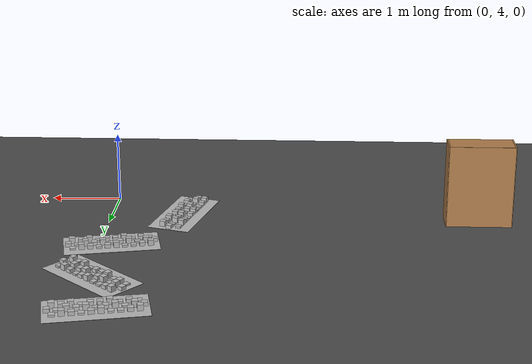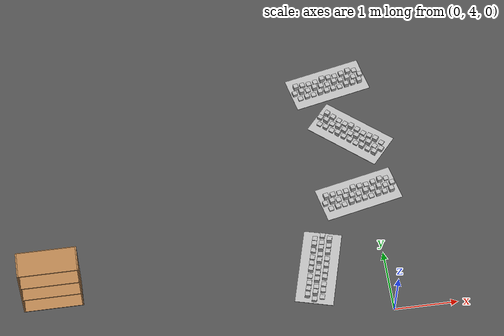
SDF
<sdf version="1.6">
 <world name="default">
  <model name="ground_plane">
   <static>1</static>
   <link name="link">
    <collision name="collision">
     <geometry><plane><normal>0 0 1</normal><size>100 100</size></plane></geometry>
     <surface>
      <contact><collide_bitmask>65535</collide_bitmask></contact>
      <friction><ode><mu>100</mu><mu2>50</mu2></ode></friction>
     </surface>
    </collision>
    <visual name="visual">
     <cast_shadows>0</cast_shadows>
     <geometry><plane><normal>0 0 1</normal><size>100 100</size></plane></geometry>
     <material>
      <script><uri>file://media/materials/scripts/gazebo.material</uri><name>Gazebo/Grey</name></script>
     </material>
    </visual>
   </link>
  </model>
  <model name="frc2016_roughterrain_clone_0">
   <static>1</static>
   <link name="link">
    <visual name="platform">
     <pose>0 0 0.08269 0 -0 0</pose>
     <geometry><box><size>1.27 0.5969 0.003175</size></box></geometry>
    </visual>
    <collision name="platform">
     <pose>0 0 0.08269 0 -0 0</pose>
     <geometry><box><size>1.27 0.5969 0.003175</size></box></geometry>
    </collision>
    <visual name="row1_block1_sm">
     <pose>0.51435 0.1143 0.09698 0 -0 0</pose>
     <geometry><box><size>0.0762 0.0762 0.0254</size></box></geometry>
    </visual>
    <collision name="row1_block1_sm">
     <pose>0.51435 0.1143 0.09698 0 -0 0</pose>
     <geometry><box><size>0.0762 0.0762 0.0254</size></box></geometry>
    </collision>
    <visual name="row1_block2_lg">
     <pose>0.40005 0.1143 0.12238 0 -0 0</pose>
     <geometry><box><size>0.0762 0.0762 0.0762</size></box></geometry>
    </visual>
    <collision name="row1_block2_lg">
     <pose>0.40005 0.1143 0.12238 0 -0 0</pose>
     <geometry><box><size>0.0762 0.0762 0.0762</size></box></geometry>
    </collision>
    <visual name="row1_block3_md">
     <pose>0.28575 0.1143 0.10968 0 -0 0</pose>
     <geometry><box><size>0.0762 0.0762 0.0508</size></box></geometry>
    </visual>
    <collision name="row1_block3_md">
     <pose>0.28575 0.1143 0.10968 0 -0 0</pose>
     <geometry><box><size>0.0762 0.0762 0.0508</size></box></geometry>
    </collision>
    <visual name="row1_block4_sm">
     <pose>0.17145 0.1143 0.09698 0 -0 0</pose>
     <geometry><box><size>0.0762 0.0762 0.0254</size></box></geometry>
    </visual>
    <collision name="row1_block4_sm">
     <pose>0.17145 0.1143 0.09698 0 -0 0</pose>
     <geometry><box><size>0.0762 0.0762 0.0254</size></box></geometry>
    </collision>
    <visual name="row1_block5_md">
     <pose>0.05715 0.1143 0.10968 0 -0 0</pose>
     <geometry><box><size>0.0762 0.0762 0.0508</size></box></geometry>
    </visual>
    <collision name="row1_block5_md">
     <pose>0.05715 0.1143 0.10968 0 -0 0</pose>
     <geometry><box><size>0.0762 0.0762 0.0508</size></box></geometry>
    </collision>
    <visual name="row1_block6_lg">
     <pose>-0.05715 0.1143 0.12238 0 -0 0</pose>
     <geometry><box><size>0.0762 0.0762 0.0762</size></box></geometry>
    </visual>
    <collision name="row1_block6_lg">
     <pose>-0.05715 0.1143 0.12238 0 -0 0</pose>
     <geometry><box><size>0.0762 0.0762 0.0762</size></box></geometry>
    </collision>
    <visual name="row1_block7_sm">
     <pose>-0.17145 0.1143 0.09698 0 -0 0</pose>
     <geometry><box><size>0.0762 0.0762 0.0254</size></box></geometry>
    </visual>
    <collision name="row1_block7_sm">
     <pose>-0.17145 0.1143 0.09698 0 -0 0</pose>
     <geometry><box><size>0.0762 0.0762 0.0254</size></box></geometry>
    </collision>
    <visual name="row1_block8_sm">
     <pose>-0.28575 0.1143 0.09698 0 -0 0</pose>
     <geometry><box><size>0.0762 0.0762 0.0254</size></box></geometry>
    </visual>
    <collision name="row1_block8_sm">
     <pose>-0.28575 0.1143 0.09698 0 -0 0</pose>
     <geometry><box><size>0.0762 0.0762 0.0254</size></box></geometry>
    </collision>
    <visual name="row1_block9_md">
     <pose>-0.40005 0.1143 0.10968 0 -0 0</pose>
     <geometry><box><size>0.0762 0.0762 0.0508</size></box></geometry>
    </visual>
    <collision name="row1_block9_md">
     <pose>-0.40005 0.1143 0.10968 0 -0 0</pose>
     <geometry><box><size>0.0762 0.0762 0.0508</size></box></geometry>
    </collision>
    <visual name="row1_block10_lg">
     <pose>-0.51435 0.1143 0.12238 0 -0 0</pose>
     <geometry><box><size>0.0762 0.0762 0.0762</size></box></geometry>
    </visual>
    <collision name="row1_block10_lg">
     <pose>-0.51435 0.1143 0.12238 0 -0 0</pose>
     <geometry><box><size>0.0762 0.0762 0.0762</size></box></geometry>
    </collision>
    <visual name="row2_block1_md">
     <pose>0.5715 0 0.10968 0 -0 0</pose>
     <geometry><box><size>0.0762 0.0762 0.0508</size></box></geometry>
    </visual>
    <collision name="row2_block1_md">
     <pose>0.5715 0 0.10968 0 -0 0</pose>
     <geometry><box><size>0.0762 0.0762 0.0508</size></box></geometry>
    </collision>
    <visual name="row2_block2_sm">
     <pose>0.4572 0 0.09698 0 -0 0</pose>
     <geometry><box><size>0.0762 0.0762 0.0254</size></box></geometry>
    </visual>
    <collision name="row2_block2_sm">
     <pose>0.4572 0 0.09698 0 -0 0</pose>
     <geometry><box><size>0.0762 0.0762 0.0254</size></box></geometry>
    </collision>
    <visual name="row2_block3_lg">
     <pose>0.3429 0 0.12238 0 -0 0</pose>
     <geometry><box><size>0.0762 0.0762 0.0762</size></box></geometry>
    </visual>
    <collision name="row2_block3_lg">
     <pose>0.3429 0 0.12238 0 -0 0</pose>
     <geometry><box><size>0.0762 0.0762 0.0762</size></box></geometry>
    </collision>
    <visual name="row2_block4_md">
     <pose>0.2286 0 0.10968 0 -0 0</pose>
     <geometry><box><size>0.0762 0.0762 0.0508</size></box></geometry>
    </visual>
    <collision name="row2_block4_md">
     <pose>0.2286 0 0.10968 0 -0 0</pose>
     <geometry><box><size>0.0762 0.0762 0.0508</size></box></geometry>
    </collision>
    <visual name="row2_block5_lg">
     <pose>0.1143 0 0.12238 0 -0 0</pose>
     <geometry><box><size>0.0762 0.0762 0.0762</size></box></geometry>
    </visual>
    <collision name="row2_block5_lg">
     <pose>0.1143 0 0.12238 0 -0 0</pose>
     <geometry><box><size>0.0762 0.0762 0.0762</size></box></geometry>
    </collision>
    <visual name="row2_block6_sm">
     <pose>0 0 0.09698 0 -0 0</pose>
     <geometry><box><size>0.0762 0.0762 0.0254</size></box></geometry>
    </visual>
    <collision name="row2_block6_sm">
     <pose>0 0 0.09698 0 -0 0</pose>
     <geometry><box><size>0.0762 0.0762 0.0254</size></box></geometry>
    </collision>
    <visual name="row2_block7_md">
     <pose>-0.1143 0 0.10968 0 -0 0</pose>
     <geometry><box><size>0.0762 0.0762 0.0508</size></box></geometry>
    </visual>
    <collision name="row2_block7_md">
     <pose>-0.1143 0 0.10968 0 -0 0</pose>
     <geometry><box><size>0.0762 0.0762 0.0508</size></box></geometry>
    </collision>
    <visual name="row2_block8_lg">
     <pose>-0.2286 0 0.12238 0 -0 0</pose>
     <geometry><box><size>0.0762 0.0762 0.0762</size></box></geometry>
    </visual>
    <collision name="row2_block8_lg">
     <pose>-0.2286 0 0.12238 0 -0 0</pose>
     <geometry><box><size>0.0762 0.0762 0.0762</size></box></geometry>
    </collision>
    <visual name="row2_block9_sm">
     <pose>-0.3429 0 0.09698 0 -0 0</pose>
     <geometry><box><size>0.0762 0.0762 0.0254</size></box></geometry>
    </visual>
    <collision name="row2_block9_sm">
     <pose>-0.3429 0 0.09698 0 -0 0</pose>
     <geometry><box><size>0.0762 0.0762 0.0254</size></box></geometry>
    </collision>
    <visual name="row2_block10_lg">
     <pose>-0.4572 0 0.12238 0 -0 0</pose>
     <geometry><box><size>0.0762 0.0762 0.0762</size></box></geometry>
    </visual>
    <collision name="row2_block10_lg">
     <pose>-0.4572 0 0.12238 0 -0 0</pose>
     <geometry><box><size>0.0762 0.0762 0.0762</size></box></geometry>
    </collision>
    <visual name="row2_block11_md">
     <pose>-0.5715 0 0.10968 0 -0 0</pose>
     <geometry><box><size>0.0762 0.0762 0.0508</size></box></geometry>
    </visual>
    <collision name="row2_block11_md">
     <pose>-0.5715 0 0.10968 0 -0 0</pose>
     <geometry><box><size>0.0762 0.0762 0.0508</size></box></geometry>
    </collision>
    <visual name="row3_block1_lg">
     <pose>0.51435 -0.1143 0.12238 0 -0 0</pose>
     <geometry><box><size>0.0762 0.0762 0.0762</size></box></geometry>
    </visual>
    <collision name="row3_block1_lg">
     <pose>0.51435 -0.1143 0.12238 0 -0 0</pose>
     <geometry><box><size>0.0762 0.0762 0.0762</size></box></geometry>
    </collision>
    <visual name="row3_block2_md">
     <pose>0.40005 -0.1143 0.10968 0 -0 0</pose>
     <geometry><box><size>0.0762 0.0762 0.0508</size></box></geometry>
    </visual>
    <collision name="row3_block2_md">
     <pose>0.40005 -0.1143 0.10968 0 -0 0</pose>
     <geometry><box><size>0.0762 0.0762 0.0508</size></box></geometry>
    </collision>
    <visual name="row3_block3_lg">
     <pose>0.28575 -0.1143 0.12238 0 -0 0</pose>
     <geometry><box><size>0.0762 0.0762 0.0762</size></box></geometry>
    </visual>
    <collision name="row3_block3_lg">
     <pose>0.28575 -0.1143 0.12238 0 -0 0</pose>
     <geometry><box><size>0.0762 0.0762 0.0762</size></box></geometry>
    </collision>
    <visual name="row3_block4_sm">
     <pose>0.17145 -0.1143 0.09698 0 -0 0</pose>
     <geometry><box><size>0.0762 0.0762 0.0254</size></box></geometry>
    </visual>
    <collision name="row3_block4_sm">
     <pose>0.17145 -0.1143 0.09698 0 -0 0</pose>
     <geometry><box><size>0.0762 0.0762 0.0254</size></box></geometry>
    </collision>
    <visual name="row3_block5_md">
     <pose>0.05715 -0.1143 0.10968 0 -0 0</pose>
     <geometry><box><size>0.0762 0.0762 0.0508</size></box></geometry>
    </visual>
    <collision name="row3_block5_md">
     <pose>0.05715 -0.1143 0.10968 0 -0 0</pose>
     <geometry><box><size>0.0762 0.0762 0.0508</size></box></geometry>
    </collision>
    <visual name="row3_block6_md">
     <pose>-0.05715 -0.1143 0.10968 0 -0 0</pose>
     <geometry><box><size>0.0762 0.0762 0.0508</size></box></geometry>
    </visual>
    <collision name="row3_block6_md">
     <pose>-0.05715 -0.1143 0.10968 0 -0 0</pose>
     <geometry><box><size>0.0762 0.0762 0.0508</size></box></geometry>
    </collision>
    <visual name="row3_block7_lg">
     <pose>-0.17145 -0.1143 0.12238 0 -0 0</pose>
     <geometry><box><size>0.0762 0.0762 0.0762</size></box></geometry>
    </visual>
    <collision name="row3_block7_lg">
     <pose>-0.17145 -0.1143 0.12238 0 -0 0</pose>
     <geometry><box><size>0.0762 0.0762 0.0762</size></box></geometry>
    </collision>
    <visual name="row3_block8_sm">
     <pose>-0.28575 -0.1143 0.09698 0 -0 0</pose>
     <geometry><box><size>0.0762 0.0762 0.0254</size></box></geometry>
    </visual>
    <collision name="row3_block8_sm">
     <pose>-0.28575 -0.1143 0.09698 0 -0 0</pose>
     <geometry><box><size>0.0762 0.0762 0.0254</size></box></geometry>
    </collision>
    <visual name="row3_block9_md">
     <pose>-0.40005 -0.1143 0.10968 0 -0 0</pose>
     <geometry><box><size>0.0762 0.0762 0.0508</size></box></geometry>
    </visual>
    <collision name="row3_block9_md">
     <pose>-0.40005 -0.1143 0.10968 0 -0 0</pose>
     <geometry><box><size>0.0762 0.0762 0.0508</size></box></geometry>
    </collision>
    <visual name="row3_block10_sm">
     <pose>-0.51435 -0.1143 0.09698 0 -0 0</pose>
     <geometry><box><size>0.0762 0.0762 0.0254</size></box></geometry>
    </visual>
    <collision name="row3_block10_sm">
     <pose>-0.51435 -0.1143 0.09698 0 -0 0</pose>
     <geometry><box><size>0.0762 0.0762 0.0254</size></box></geometry>
    </collision>
   </link>
   <pose>-0.213898 6.06463 0 -0.037204 0.000686 0.216059</pose>
  </model>
  <model name="bookshelf_0">
   <static>1</static>
   <link name="link">
    <inertial><mass>1</mass></inertial>
    <collision name="back">
     <pose>0 0.005 0.6 0 -0 0</pose>
     <geometry><box><size>0.9 0.01 1.2</size></box></geometry>
    </collision>
    <visual name="visual1">
     <pose>0 0.005 0.6 0 -0 0</pose>
     <geometry><box><size>0.9 0.01 1.2</size></box></geometry>
     <material>
      <script><uri>file://media/materials/scripts/gazebo.material</uri><name>Gazebo/Wood</name></script>
     </material>
    </visual>
    <collision name="left_side">
     <pose>0.45 -0.195 0.6 0 -0 0</pose>
     <geometry><box><size>0.02 0.4 1.2</size></box></geometry>
    </collision>
    <visual name="visual2">
     <pose>0.45 -0.195 0.6 0 -0 0</pose>
     <geometry><box><size>0.02 0.4 1.2</size></box></geometry>
     <material>
      <script><uri>file://media/materials/scripts/gazebo.material</uri><name>Gazebo/Wood</name></script>
     </material>
    </visual>
    <collision name="right_side">
     <pose>-0.45 -0.195 0.6 0 -0 0</pose>
     <geometry><box><size>0.02 0.4 1.2</size></box></geometry>
    </collision>
    <visual name="visual3">
     <pose>-0.45 -0.195 0.6 0 -0 0</pose>
     <geometry><box><size>0.02 0.4 1.2</size></box></geometry>
     <material>
      <script><uri>file://media/materials/scripts/gazebo.material</uri><name>Gazebo/Wood</name></script>
     </material>
    </visual>
    <collision name="bottom">
     <pose>0 -0.195 0.03 0 -0 0</pose>
     <geometry><box><size>0.88 0.4 0.06</size></box></geometry>
    </collision>
    <visual name="visual4">
     <pose>0 -0.195 0.03 0 -0 0</pose>
     <geometry><box><size>0.88 0.4 0.06</size></box></geometry>
     <material>
      <script><uri>file://media/materials/scripts/gazebo.material</uri><name>Gazebo/Wood</name></script>
     </material>
    </visual>
    <collision name="top">
     <pose>0 -0.195 1.19 0 -0 0</pose>
     <geometry><box><size>0.88 0.4 0.02</size></box></geometry>
    </collision>
    <visual name="visual5">
     <pose>0 -0.195 1.19 0 -0 0</pose>
     <geometry><box><size>0.88 0.4 0.02</size></box></geometry>
     <material>
      <script><uri>file://media/materials/scripts/gazebo.material</uri><name>Gazebo/Wood</name></script>
     </material>
    </visual>
    <collision name="low_shelf">
     <pose>0 -0.195 0.43 0 -0 0</pose>
     <geometry><box><size>0.88 0.4 0.02</size></box></geometry>
    </collision>
    <visual name="visual6">
     <pose>0 -0.195 0.43 0 -0 0</pose>
     <geometry><box><size>0.88 0.4 0.02</size></box></geometry>
     <material>
      <script><uri>file://media/materials/scripts/gazebo.material</uri><name>Gazebo/Wood</name></script>
     </material>
    </visual>
    <collision name="high_shelf">
     <pose>0 -0.195 0.8 0 -0 0</pose>
     <geometry><box><size>0.88 0.4 0.02</size></box></geometry>
    </collision>
    <visual name="visual7">
     <pose>0 -0.195 0.8 0 -0 0</pose>
     <geometry><box><size>0.88 0.4 0.02</size></box></geometry>
     <material>
      <script><uri>file://media/materials/scripts/gazebo.material</uri><name>Gazebo/Wood</name></script>
     </material>
    </visual>
   </link>
   <pose>-5.19396 5.10085 0 0 -0 0</pose>
  </model>
  <model name="frc2016_roughterrain_clone_2_clone_clone_0_clone_0">
   <static>1</static>
   <link name="link">
    <visual name="platform">
     <pose>0 0 0.08269 0 -0 0</pose>
     <geometry><box><size>1.27 0.5969 0.003175</size></box></geometry>
    </visual>
    <collision name="platform">
     <pose>0 0 0.08269 0 -0 0</pose>
     <geometry><box><size>1.27 0.5969 0.003175</size></box></geometry>
    </collision>
    <visual name="row1_block1_sm">
     <pose>0.51435 0.1143 0.09698 0 -0 0</pose>
     <geometry><box><size>0.0762 0.0762 0.0254</size></box></geometry>
    </visual>
    <collision name="row1_block1_sm">
     <pose>0.51435 0.1143 0.09698 0 -0 0</pose>
     <geometry><box><size>0.0762 0.0762 0.0254</size></box></geometry>
    </collision>
    <visual name="row1_block2_lg">
     <pose>0.40005 0.1143 0.12238 0 -0 0</pose>
     <geometry><box><size>0.0762 0.0762 0.0762</size></box></geometry>
    </visual>
    <collision name="row1_block2_lg">
     <pose>0.40005 0.1143 0.12238 0 -0 0</pose>
     <geometry><box><size>0.0762 0.0762 0.0762</size></box></geometry>
    </collision>
    <visual name="row1_block3_md">
     <pose>0.28575 0.1143 0.10968 0 -0 0</pose>
     <geometry><box><size>0.0762 0.0762 0.0508</size></box></geometry>
    </visual>
    <collision name="row1_block3_md">
     <pose>0.28575 0.1143 0.10968 0 -0 0</pose>
     <geometry><box><size>0.0762 0.0762 0.0508</size></box></geometry>
    </collision>
    <visual name="row1_block4_sm">
     <pose>0.17145 0.1143 0.09698 0 -0 0</pose>
     <geometry><box><size>0.0762 0.0762 0.0254</size></box></geometry>
    </visual>
    <collision name="row1_block4_sm">
     <pose>0.17145 0.1143 0.09698 0 -0 0</pose>
     <geometry><box><size>0.0762 0.0762 0.0254</size></box></geometry>
    </collision>
    <visual name="row1_block5_md">
     <pose>0.05715 0.1143 0.10968 0 -0 0</pose>
     <geometry><box><size>0.0762 0.0762 0.0508</size></box></geometry>
    </visual>
    <collision name="row1_block5_md">
     <pose>0.05715 0.1143 0.10968 0 -0 0</pose>
     <geometry><box><size>0.0762 0.0762 0.0508</size></box></geometry>
    </collision>
    <visual name="row1_block6_lg">
     <pose>-0.05715 0.1143 0.12238 0 -0 0</pose>
     <geometry><box><size>0.0762 0.0762 0.0762</size></box></geometry>
    </visual>
    <collision name="row1_block6_lg">
     <pose>-0.05715 0.1143 0.12238 0 -0 0</pose>
     <geometry><box><size>0.0762 0.0762 0.0762</size></box></geometry>
    </collision>
    <visual name="row1_block7_sm">
     <pose>-0.17145 0.1143 0.09698 0 -0 0</pose>
     <geometry><box><size>0.0762 0.0762 0.0254</size></box></geometry>
    </visual>
    <collision name="row1_block7_sm">
     <pose>-0.17145 0.1143 0.09698 0 -0 0</pose>
     <geometry><box><size>0.0762 0.0762 0.0254</size></box></geometry>
    </collision>
    <visual name="row1_block8_sm">
     <pose>-0.28575 0.1143 0.09698 0 -0 0</pose>
     <geometry><box><size>0.0762 0.0762 0.0254</size></box></geometry>
    </visual>
    <collision name="row1_block8_sm">
     <pose>-0.28575 0.1143 0.09698 0 -0 0</pose>
     <geometry><box><size>0.0762 0.0762 0.0254</size></box></geometry>
    </collision>
    <visual name="row1_block9_md">
     <pose>-0.40005 0.1143 0.10968 0 -0 0</pose>
     <geometry><box><size>0.0762 0.0762 0.0508</size></box></geometry>
    </visual>
    <collision name="row1_block9_md">
     <pose>-0.40005 0.1143 0.10968 0 -0 0</pose>
     <geometry><box><size>0.0762 0.0762 0.0508</size></box></geometry>
    </collision>
    <visual name="row1_block10_lg">
     <pose>-0.51435 0.1143 0.12238 0 -0 0</pose>
     <geometry><box><size>0.0762 0.0762 0.0762</size></box></geometry>
    </visual>
    <collision name="row1_block10_lg">
     <pose>-0.51435 0.1143 0.12238 0 -0 0</pose>
     <geometry><box><size>0.0762 0.0762 0.0762</size></box></geometry>
    </collision>
    <visual name="row2_block1_md">
     <pose>0.5715 0 0.10968 0 -0 0</pose>
     <geometry><box><size>0.0762 0.0762 0.0508</size></box></geometry>
    </visual>
    <collision name="row2_block1_md">
     <pose>0.5715 0 0.10968 0 -0 0</pose>
     <geometry><box><size>0.0762 0.0762 0.0508</size></box></geometry>
    </collision>
    <visual name="row2_block2_sm">
     <pose>0.4572 0 0.09698 0 -0 0</pose>
     <geometry><box><size>0.0762 0.0762 0.0254</size></box></geometry>
    </visual>
    <collision name="row2_block2_sm">
     <pose>0.4572 0 0.09698 0 -0 0</pose>
     <geometry><box><size>0.0762 0.0762 0.0254</size></box></geometry>
    </collision>
    <visual name="row2_block3_lg">
     <pose>0.3429 0 0.12238 0 -0 0</pose>
     <geometry><box><size>0.0762 0.0762 0.0762</size></box></geometry>
    </visual>
    <collision name="row2_block3_lg">
     <pose>0.3429 0 0.12238 0 -0 0</pose>
     <geometry><box><size>0.0762 0.0762 0.0762</size></box></geometry>
    </collision>
    <visual name="row2_block4_md">
     <pose>0.2286 0 0.10968 0 -0 0</pose>
     <geometry><box><size>0.0762 0.0762 0.0508</size></box></geometry>
    </visual>
    <collision name="row2_block4_md">
     <pose>0.2286 0 0.10968 0 -0 0</pose>
     <geometry><box><size>0.0762 0.0762 0.0508</size></box></geometry>
    </collision>
    <visual name="row2_block5_lg">
     <pose>0.1143 0 0.12238 0 -0 0</pose>
     <geometry><box><size>0.0762 0.0762 0.0762</size></box></geometry>
    </visual>
    <collision name="row2_block5_lg">
     <pose>0.1143 0 0.12238 0 -0 0</pose>
     <geometry><box><size>0.0762 0.0762 0.0762</size></box></geometry>
    </collision>
    <visual name="row2_block6_sm">
     <pose>0 0 0.09698 0 -0 0</pose>
     <geometry><box><size>0.0762 0.0762 0.0254</size></box></geometry>
    </visual>
    <collision name="row2_block6_sm">
     <pose>0 0 0.09698 0 -0 0</pose>
     <geometry><box><size>0.0762 0.0762 0.0254</size></box></geometry>
    </collision>
    <visual name="row2_block7_md">
     <pose>-0.1143 0 0.10968 0 -0 0</pose>
     <geometry><box><size>0.0762 0.0762 0.0508</size></box></geometry>
    </visual>
    <collision name="row2_block7_md">
     <pose>-0.1143 0 0.10968 0 -0 0</pose>
     <geometry><box><size>0.0762 0.0762 0.0508</size></box></geometry>
    </collision>
    <visual name="row2_block8_lg">
     <pose>-0.2286 0 0.12238 0 -0 0</pose>
     <geometry><box><size>0.0762 0.0762 0.0762</size></box></geometry>
    </visual>
    <collision name="row2_block8_lg">
     <pose>-0.2286 0 0.12238 0 -0 0</pose>
     <geometry><box><size>0.0762 0.0762 0.0762</size></box></geometry>
    </collision>
    <visual name="row2_block9_sm">
     <pose>-0.3429 0 0.09698 0 -0 0</pose>
     <geometry><box><size>0.0762 0.0762 0.0254</size></box></geometry>
    </visual>
    <collision name="row2_block9_sm">
     <pose>-0.3429 0 0.09698 0 -0 0</pose>
     <geometry><box><size>0.0762 0.0762 0.0254</size></box></geometry>
    </collision>
    <visual name="row2_block10_lg">
     <pose>-0.4572 0 0.12238 0 -0 0</pose>
     <geometry><box><size>0.0762 0.0762 0.0762</size></box></geometry>
    </visual>
    <collision name="row2_block10_lg">
     <pose>-0.4572 0 0.12238 0 -0 0</pose>
     <geometry><box><size>0.0762 0.0762 0.0762</size></box></geometry>
    </collision>
    <visual name="row2_block11_md">
     <pose>-0.5715 0 0.10968 0 -0 0</pose>
     <geometry><box><size>0.0762 0.0762 0.0508</size></box></geometry>
    </visual>
    <collision name="row2_block11_md">
     <pose>-0.5715 0 0.10968 0 -0 0</pose>
     <geometry><box><size>0.0762 0.0762 0.0508</size></box></geometry>
    </collision>
    <visual name="row3_block1_lg">
     <pose>0.51435 -0.1143 0.12238 0 -0 0</pose>
     <geometry><box><size>0.0762 0.0762 0.0762</size></box></geometry>
    </visual>
    <collision name="row3_block1_lg">
     <pose>0.51435 -0.1143 0.12238 0 -0 0</pose>
     <geometry><box><size>0.0762 0.0762 0.0762</size></box></geometry>
    </collision>
    <visual name="row3_block2_md">
     <pose>0.40005 -0.1143 0.10968 0 -0 0</pose>
     <geometry><box><size>0.0762 0.0762 0.0508</size></box></geometry>
    </visual>
    <collision name="row3_block2_md">
     <pose>0.40005 -0.1143 0.10968 0 -0 0</pose>
     <geometry><box><size>0.0762 0.0762 0.0508</size></box></geometry>
    </collision>
    <visual name="row3_block3_lg">
     <pose>0.28575 -0.1143 0.12238 0 -0 0</pose>
     <geometry><box><size>0.0762 0.0762 0.0762</size></box></geometry>
    </visual>
    <collision name="row3_block3_lg">
     <pose>0.28575 -0.1143 0.12238 0 -0 0</pose>
     <geometry><box><size>0.0762 0.0762 0.0762</size></box></geometry>
    </collision>
    <visual name="row3_block4_sm">
     <pose>0.17145 -0.1143 0.09698 0 -0 0</pose>
     <geometry><box><size>0.0762 0.0762 0.0254</size></box></geometry>
    </visual>
    <collision name="row3_block4_sm">
     <pose>0.17145 -0.1143 0.09698 0 -0 0</pose>
     <geometry><box><size>0.0762 0.0762 0.0254</size></box></geometry>
    </collision>
    <visual name="row3_block5_md">
     <pose>0.05715 -0.1143 0.10968 0 -0 0</pose>
     <geometry><box><size>0.0762 0.0762 0.0508</size></box></geometry>
    </visual>
    <collision name="row3_block5_md">
     <pose>0.05715 -0.1143 0.10968 0 -0 0</pose>
     <geometry><box><size>0.0762 0.0762 0.0508</size></box></geometry>
    </collision>
    <visual name="row3_block6_md">
     <pose>-0.05715 -0.1143 0.10968 0 -0 0</pose>
     <geometry><box><size>0.0762 0.0762 0.0508</size></box></geometry>
    </visual>
    <collision name="row3_block6_md">
     <pose>-0.05715 -0.1143 0.10968 0 -0 0</pose>
     <geometry><box><size>0.0762 0.0762 0.0508</size></box></geometry>
    </collision>
    <visual name="row3_block7_lg">
     <pose>-0.17145 -0.1143 0.12238 0 -0 0</pose>
     <geometry><box><size>0.0762 0.0762 0.0762</size></box></geometry>
    </visual>
    <collision name="row3_block7_lg">
     <pose>-0.17145 -0.1143 0.12238 0 -0 0</pose>
     <geometry><box><size>0.0762 0.0762 0.0762</size></box></geometry>
    </collision>
    <visual name="row3_block8_sm">
     <pose>-0.28575 -0.1143 0.09698 0 -0 0</pose>
     <geometry><box><size>0.0762 0.0762 0.0254</size></box></geometry>
    </visual>
    <collision name="row3_block8_sm">
     <pose>-0.28575 -0.1143 0.09698 0 -0 0</pose>
     <geometry><box><size>0.0762 0.0762 0.0254</size></box></geometry>
    </collision>
    <visual name="row3_block9_md">
     <pose>-0.40005 -0.1143 0.10968 0 -0 0</pose>
     <geometry><box><size>0.0762 0.0762 0.0508</size></box></geometry>
    </visual>
    <collision name="row3_block9_md">
     <pose>-0.40005 -0.1143 0.10968 0 -0 0</pose>
     <geometry><box><size>0.0762 0.0762 0.0508</size></box></geometry>
    </collision>
    <visual name="row3_block10_sm">
     <pose>-0.51435 -0.1143 0.09698 0 -0 0</pose>
     <geometry><box><size>0.0762 0.0762 0.0254</size></box></geometry>
    </visual>
    <collision name="row3_block10_sm">
     <pose>-0.51435 -0.1143 0.09698 0 -0 0</pose>
     <geometry><box><size>0.0762 0.0762 0.0254</size></box></geometry>
    </collision>
   </link>
   <pose>-0.158479 7.19541 0 -0.022852 -0.029369 -0.711774</pose>
  </model>
  <model name="frc2016_roughterrain_clone_2_clone_clone_1_clone_clone">
   <static>1</static>
   <link name="link">
    <visual name="platform">
     <pose>0 0 0.08269 0 -0 0</pose>
     <geometry><box><size>1.27 0.5969 0.003175</size></box></geometry>
    </visual>
    <collision name="platform">
     <pose>0 0 0.08269 0 -0 0</pose>
     <geometry><box><size>1.27 0.5969 0.003175</size></box></geometry>
    </collision>
    <visual name="row1_block1_sm">
     <pose>0.51435 0.1143 0.09698 0 -0 0</pose>
     <geometry><box><size>0.0762 0.0762 0.0254</size></box></geometry>
    </visual>
    <collision name="row1_block1_sm">
     <pose>0.51435 0.1143 0.09698 0 -0 0</pose>
     <geometry><box><size>0.0762 0.0762 0.0254</size></box></geometry>
    </collision>
    <visual name="row1_block2_lg">
     <pose>0.40005 0.1143 0.12238 0 -0 0</pose>
     <geometry><box><size>0.0762 0.0762 0.0762</size></box></geometry>
    </visual>
    <collision name="row1_block2_lg">
     <pose>0.40005 0.1143 0.12238 0 -0 0</pose>
     <geometry><box><size>0.0762 0.0762 0.0762</size></box></geometry>
    </collision>
    <visual name="row1_block3_md">
     <pose>0.28575 0.1143 0.10968 0 -0 0</pose>
     <geometry><box><size>0.0762 0.0762 0.0508</size></box></geometry>
    </visual>
    <collision name="row1_block3_md">
     <pose>0.28575 0.1143 0.10968 0 -0 0</pose>
     <geometry><box><size>0.0762 0.0762 0.0508</size></box></geometry>
    </collision>
    <visual name="row1_block4_sm">
     <pose>0.17145 0.1143 0.09698 0 -0 0</pose>
     <geometry><box><size>0.0762 0.0762 0.0254</size></box></geometry>
    </visual>
    <collision name="row1_block4_sm">
     <pose>0.17145 0.1143 0.09698 0 -0 0</pose>
     <geometry><box><size>0.0762 0.0762 0.0254</size></box></geometry>
    </collision>
    <visual name="row1_block5_md">
     <pose>0.05715 0.1143 0.10968 0 -0 0</pose>
     <geometry><box><size>0.0762 0.0762 0.0508</size></box></geometry>
    </visual>
    <collision name="row1_block5_md">
     <pose>0.05715 0.1143 0.10968 0 -0 0</pose>
     <geometry><box><size>0.0762 0.0762 0.0508</size></box></geometry>
    </collision>
    <visual name="row1_block6_lg">
     <pose>-0.05715 0.1143 0.12238 0 -0 0</pose>
     <geometry><box><size>0.0762 0.0762 0.0762</size></box></geometry>
    </visual>
    <collision name="row1_block6_lg">
     <pose>-0.05715 0.1143 0.12238 0 -0 0</pose>
     <geometry><box><size>0.0762 0.0762 0.0762</size></box></geometry>
    </collision>
    <visual name="row1_block7_sm">
     <pose>-0.17145 0.1143 0.09698 0 -0 0</pose>
     <geometry><box><size>0.0762 0.0762 0.0254</size></box></geometry>
    </visual>
    <collision name="row1_block7_sm">
     <pose>-0.17145 0.1143 0.09698 0 -0 0</pose>
     <geometry><box><size>0.0762 0.0762 0.0254</size></box></geometry>
    </collision>
    <visual name="row1_block8_sm">
     <pose>-0.28575 0.1143 0.09698 0 -0 0</pose>
     <geometry><box><size>0.0762 0.0762 0.0254</size></box></geometry>
    </visual>
    <collision name="row1_block8_sm">
     <pose>-0.28575 0.1143 0.09698 0 -0 0</pose>
     <geometry><box><size>0.0762 0.0762 0.0254</size></box></geometry>
    </collision>
    <visual name="row1_block9_md">
     <pose>-0.40005 0.1143 0.10968 0 -0 0</pose>
     <geometry><box><size>0.0762 0.0762 0.0508</size></box></geometry>
    </visual>
    <collision name="row1_block9_md">
     <pose>-0.40005 0.1143 0.10968 0 -0 0</pose>
     <geometry><box><size>0.0762 0.0762 0.0508</size></box></geometry>
    </collision>
    <visual name="row1_block10_lg">
     <pose>-0.51435 0.1143 0.12238 0 -0 0</pose>
     <geometry><box><size>0.0762 0.0762 0.0762</size></box></geometry>
    </visual>
    <collision name="row1_block10_lg">
     <pose>-0.51435 0.1143 0.12238 0 -0 0</pose>
     <geometry><box><size>0.0762 0.0762 0.0762</size></box></geometry>
    </collision>
    <visual name="row2_block1_md">
     <pose>0.5715 0 0.10968 0 -0 0</pose>
     <geometry><box><size>0.0762 0.0762 0.0508</size></box></geometry>
    </visual>
    <collision name="row2_block1_md">
     <pose>0.5715 0 0.10968 0 -0 0</pose>
     <geometry><box><size>0.0762 0.0762 0.0508</size></box></geometry>
    </collision>
    <visual name="row2_block2_sm">
     <pose>0.4572 0 0.09698 0 -0 0</pose>
     <geometry><box><size>0.0762 0.0762 0.0254</size></box></geometry>
    </visual>
    <collision name="row2_block2_sm">
     <pose>0.4572 0 0.09698 0 -0 0</pose>
     <geometry><box><size>0.0762 0.0762 0.0254</size></box></geometry>
    </collision>
    <visual name="row2_block3_lg">
     <pose>0.3429 0 0.12238 0 -0 0</pose>
     <geometry><box><size>0.0762 0.0762 0.0762</size></box></geometry>
    </visual>
    <collision name="row2_block3_lg">
     <pose>0.3429 0 0.12238 0 -0 0</pose>
     <geometry><box><size>0.0762 0.0762 0.0762</size></box></geometry>
    </collision>
    <visual name="row2_block4_md">
     <pose>0.2286 0 0.10968 0 -0 0</pose>
     <geometry><box><size>0.0762 0.0762 0.0508</size></box></geometry>
    </visual>
    <collision name="row2_block4_md">
     <pose>0.2286 0 0.10968 0 -0 0</pose>
     <geometry><box><size>0.0762 0.0762 0.0508</size></box></geometry>
    </collision>
    <visual name="row2_block5_lg">
     <pose>0.1143 0 0.12238 0 -0 0</pose>
     <geometry><box><size>0.0762 0.0762 0.0762</size></box></geometry>
    </visual>
    <collision name="row2_block5_lg">
     <pose>0.1143 0 0.12238 0 -0 0</pose>
     <geometry><box><size>0.0762 0.0762 0.0762</size></box></geometry>
    </collision>
    <visual name="row2_block6_sm">
     <pose>0 0 0.09698 0 -0 0</pose>
     <geometry><box><size>0.0762 0.0762 0.0254</size></box></geometry>
    </visual>
    <collision name="row2_block6_sm">
     <pose>0 0 0.09698 0 -0 0</pose>
     <geometry><box><size>0.0762 0.0762 0.0254</size></box></geometry>
    </collision>
    <visual name="row2_block7_md">
     <pose>-0.1143 0 0.10968 0 -0 0</pose>
     <geometry><box><size>0.0762 0.0762 0.0508</size></box></geometry>
    </visual>
    <collision name="row2_block7_md">
     <pose>-0.1143 0 0.10968 0 -0 0</pose>
     <geometry><box><size>0.0762 0.0762 0.0508</size></box></geometry>
    </collision>
    <visual name="row2_block8_lg">
     <pose>-0.2286 0 0.12238 0 -0 0</pose>
     <geometry><box><size>0.0762 0.0762 0.0762</size></box></geometry>
    </visual>
    <collision name="row2_block8_lg">
     <pose>-0.2286 0 0.12238 0 -0 0</pose>
     <geometry><box><size>0.0762 0.0762 0.0762</size></box></geometry>
    </collision>
    <visual name="row2_block9_sm">
     <pose>-0.3429 0 0.09698 0 -0 0</pose>
     <geometry><box><size>0.0762 0.0762 0.0254</size></box></geometry>
    </visual>
    <collision name="row2_block9_sm">
     <pose>-0.3429 0 0.09698 0 -0 0</pose>
     <geometry><box><size>0.0762 0.0762 0.0254</size></box></geometry>
    </collision>
    <visual name="row2_block10_lg">
     <pose>-0.4572 0 0.12238 0 -0 0</pose>
     <geometry><box><size>0.0762 0.0762 0.0762</size></box></geometry>
    </visual>
    <collision name="row2_block10_lg">
     <pose>-0.4572 0 0.12238 0 -0 0</pose>
     <geometry><box><size>0.0762 0.0762 0.0762</size></box></geometry>
    </collision>
    <visual name="row2_block11_md">
     <pose>-0.5715 0 0.10968 0 -0 0</pose>
     <geometry><box><size>0.0762 0.0762 0.0508</size></box></geometry>
    </visual>
    <collision name="row2_block11_md">
     <pose>-0.5715 0 0.10968 0 -0 0</pose>
     <geometry><box><size>0.0762 0.0762 0.0508</size></box></geometry>
    </collision>
    <visual name="row3_block1_lg">
     <pose>0.51435 -0.1143 0.12238 0 -0 0</pose>
     <geometry><box><size>0.0762 0.0762 0.0762</size></box></geometry>
    </visual>
    <collision name="row3_block1_lg">
     <pose>0.51435 -0.1143 0.12238 0 -0 0</pose>
     <geometry><box><size>0.0762 0.0762 0.0762</size></box></geometry>
    </collision>
    <visual name="row3_block2_md">
     <pose>0.40005 -0.1143 0.10968 0 -0 0</pose>
     <geometry><box><size>0.0762 0.0762 0.0508</size></box></geometry>
    </visual>
    <collision name="row3_block2_md">
     <pose>0.40005 -0.1143 0.10968 0 -0 0</pose>
     <geometry><box><size>0.0762 0.0762 0.0508</size></box></geometry>
    </collision>
    <visual name="row3_block3_lg">
     <pose>0.28575 -0.1143 0.12238 0 -0 0</pose>
     <geometry><box><size>0.0762 0.0762 0.0762</size></box></geometry>
    </visual>
    <collision name="row3_block3_lg">
     <pose>0.28575 -0.1143 0.12238 0 -0 0</pose>
     <geometry><box><size>0.0762 0.0762 0.0762</size></box></geometry>
    </collision>
    <visual name="row3_block4_sm">
     <pose>0.17145 -0.1143 0.09698 0 -0 0</pose>
     <geometry><box><size>0.0762 0.0762 0.0254</size></box></geometry>
    </visual>
    <collision name="row3_block4_sm">
     <pose>0.17145 -0.1143 0.09698 0 -0 0</pose>
     <geometry><box><size>0.0762 0.0762 0.0254</size></box></geometry>
    </collision>
    <visual name="row3_block5_md">
     <pose>0.05715 -0.1143 0.10968 0 -0 0</pose>
     <geometry><box><size>0.0762 0.0762 0.0508</size></box></geometry>
    </visual>
    <collision name="row3_block5_md">
     <pose>0.05715 -0.1143 0.10968 0 -0 0</pose>
     <geometry><box><size>0.0762 0.0762 0.0508</size></box></geometry>
    </collision>
    <visual name="row3_block6_md">
     <pose>-0.05715 -0.1143 0.10968 0 -0 0</pose>
     <geometry><box><size>0.0762 0.0762 0.0508</size></box></geometry>
    </visual>
    <collision name="row3_block6_md">
     <pose>-0.05715 -0.1143 0.10968 0 -0 0</pose>
     <geometry><box><size>0.0762 0.0762 0.0508</size></box></geometry>
    </collision>
    <visual name="row3_block7_lg">
     <pose>-0.17145 -0.1143 0.12238 0 -0 0</pose>
     <geometry><box><size>0.0762 0.0762 0.0762</size></box></geometry>
    </visual>
    <collision name="row3_block7_lg">
     <pose>-0.17145 -0.1143 0.12238 0 -0 0</pose>
     <geometry><box><size>0.0762 0.0762 0.0762</size></box></geometry>
    </collision>
    <visual name="row3_block8_sm">
     <pose>-0.28575 -0.1143 0.09698 0 -0 0</pose>
     <geometry><box><size>0.0762 0.0762 0.0254</size></box></geometry>
    </visual>
    <collision name="row3_block8_sm">
     <pose>-0.28575 -0.1143 0.09698 0 -0 0</pose>
     <geometry><box><size>0.0762 0.0762 0.0254</size></box></geometry>
    </collision>
    <visual name="row3_block9_md">
     <pose>-0.40005 -0.1143 0.10968 0 -0 0</pose>
     <geometry><box><size>0.0762 0.0762 0.0508</size></box></geometry>
    </visual>
    <collision name="row3_block9_md">
     <pose>-0.40005 -0.1143 0.10968 0 -0 0</pose>
     <geometry><box><size>0.0762 0.0762 0.0508</size></box></geometry>
    </collision>
    <visual name="row3_block10_sm">
     <pose>-0.51435 -0.1143 0.09698 0 -0 0</pose>
     <geometry><box><size>0.0762 0.0762 0.0254</size></box></geometry>
    </visual>
    <collision name="row3_block10_sm">
     <pose>-0.51435 -0.1143 0.09698 0 -0 0</pose>
     <geometry><box><size>0.0762 0.0762 0.0254</size></box></geometry>
    </collision>
   </link>
   <pose>-0.380549 8.18783 0 -0.037204 0.000686 0.216059</pose>
  </model>
  <model name="frc2016_roughterrain_clone_2_clone_clone_2_clone_1">
   <static>1</static>
   <link name="link">
    <visual name="platform">
     <pose>0 0 0.08269 0 -0 0</pose>
     <geometry><box><size>1.27 0.5969 0.003175</size></box></geometry>
    </visual>
    <collision name="platform">
     <pose>0 0 0.08269 0 -0 0</pose>
     <geometry><box><size>1.27 0.5969 0.003175</size></box></geometry>
    </collision>
    <visual name="row1_block1_sm">
     <pose>0.51435 0.1143 0.09698 0 -0 0</pose>
     <geometry><box><size>0.0762 0.0762 0.0254</size></box></geometry>
    </visual>
    <collision name="row1_block1_sm">
     <pose>0.51435 0.1143 0.09698 0 -0 0</pose>
     <geometry><box><size>0.0762 0.0762 0.0254</size></box></geometry>
    </collision>
    <visual name="row1_block2_lg">
     <pose>0.40005 0.1143 0.12238 0 -0 0</pose>
     <geometry><box><size>0.0762 0.0762 0.0762</size></box></geometry>
    </visual>
    <collision name="row1_block2_lg">
     <pose>0.40005 0.1143 0.12238 0 -0 0</pose>
     <geometry><box><size>0.0762 0.0762 0.0762</size></box></geometry>
    </collision>
    <visual name="row1_block3_md">
     <pose>0.28575 0.1143 0.10968 0 -0 0</pose>
     <geometry><box><size>0.0762 0.0762 0.0508</size></box></geometry>
    </visual>
    <collision name="row1_block3_md">
     <pose>0.28575 0.1143 0.10968 0 -0 0</pose>
     <geometry><box><size>0.0762 0.0762 0.0508</size></box></geometry>
    </collision>
    <visual name="row1_block4_sm">
     <pose>0.17145 0.1143 0.09698 0 -0 0</pose>
     <geometry><box><size>0.0762 0.0762 0.0254</size></box></geometry>
    </visual>
    <collision name="row1_block4_sm">
     <pose>0.17145 0.1143 0.09698 0 -0 0</pose>
     <geometry><box><size>0.0762 0.0762 0.0254</size></box></geometry>
    </collision>
    <visual name="row1_block5_md">
     <pose>0.05715 0.1143 0.10968 0 -0 0</pose>
     <geometry><box><size>0.0762 0.0762 0.0508</size></box></geometry>
    </visual>
    <collision name="row1_block5_md">
     <pose>0.05715 0.1143 0.10968 0 -0 0</pose>
     <geometry><box><size>0.0762 0.0762 0.0508</size></box></geometry>
    </collision>
    <visual name="row1_block6_lg">
     <pose>-0.05715 0.1143 0.12238 0 -0 0</pose>
     <geometry><box><size>0.0762 0.0762 0.0762</size></box></geometry>
    </visual>
    <collision name="row1_block6_lg">
     <pose>-0.05715 0.1143 0.12238 0 -0 0</pose>
     <geometry><box><size>0.0762 0.0762 0.0762</size></box></geometry>
    </collision>
    <visual name="row1_block7_sm">
     <pose>-0.17145 0.1143 0.09698 0 -0 0</pose>
     <geometry><box><size>0.0762 0.0762 0.0254</size></box></geometry>
    </visual>
    <collision name="row1_block7_sm">
     <pose>-0.17145 0.1143 0.09698 0 -0 0</pose>
     <geometry><box><size>0.0762 0.0762 0.0254</size></box></geometry>
    </collision>
    <visual name="row1_block8_sm">
     <pose>-0.28575 0.1143 0.09698 0 -0 0</pose>
     <geometry><box><size>0.0762 0.0762 0.0254</size></box></geometry>
    </visual>
    <collision name="row1_block8_sm">
     <pose>-0.28575 0.1143 0.09698 0 -0 0</pose>
     <geometry><box><size>0.0762 0.0762 0.0254</size></box></geometry>
    </collision>
    <visual name="row1_block9_md">
     <pose>-0.40005 0.1143 0.10968 0 -0 0</pose>
     <geometry><box><size>0.0762 0.0762 0.0508</size></box></geometry>
    </visual>
    <collision name="row1_block9_md">
     <pose>-0.40005 0.1143 0.10968 0 -0 0</pose>
     <geometry><box><size>0.0762 0.0762 0.0508</size></box></geometry>
    </collision>
    <visual name="row1_block10_lg">
     <pose>-0.51435 0.1143 0.12238 0 -0 0</pose>
     <geometry><box><size>0.0762 0.0762 0.0762</size></box></geometry>
    </visual>
    <collision name="row1_block10_lg">
     <pose>-0.51435 0.1143 0.12238 0 -0 0</pose>
     <geometry><box><size>0.0762 0.0762 0.0762</size></box></geometry>
    </collision>
    <visual name="row2_block1_md">
     <pose>0.5715 0 0.10968 0 -0 0</pose>
     <geometry><box><size>0.0762 0.0762 0.0508</size></box></geometry>
    </visual>
    <collision name="row2_block1_md">
     <pose>0.5715 0 0.10968 0 -0 0</pose>
     <geometry><box><size>0.0762 0.0762 0.0508</size></box></geometry>
    </collision>
    <visual name="row2_block2_sm">
     <pose>0.4572 0 0.09698 0 -0 0</pose>
     <geometry><box><size>0.0762 0.0762 0.0254</size></box></geometry>
    </visual>
    <collision name="row2_block2_sm">
     <pose>0.4572 0 0.09698 0 -0 0</pose>
     <geometry><box><size>0.0762 0.0762 0.0254</size></box></geometry>
    </collision>
    <visual name="row2_block3_lg">
     <pose>0.3429 0 0.12238 0 -0 0</pose>
     <geometry><box><size>0.0762 0.0762 0.0762</size></box></geometry>
    </visual>
    <collision name="row2_block3_lg">
     <pose>0.3429 0 0.12238 0 -0 0</pose>
     <geometry><box><size>0.0762 0.0762 0.0762</size></box></geometry>
    </collision>
    <visual name="row2_block4_md">
     <pose>0.2286 0 0.10968 0 -0 0</pose>
     <geometry><box><size>0.0762 0.0762 0.0508</size></box></geometry>
    </visual>
    <collision name="row2_block4_md">
     <pose>0.2286 0 0.10968 0 -0 0</pose>
     <geometry><box><size>0.0762 0.0762 0.0508</size></box></geometry>
    </collision>
    <visual name="row2_block5_lg">
     <pose>0.1143 0 0.12238 0 -0 0</pose>
     <geometry><box><size>0.0762 0.0762 0.0762</size></box></geometry>
    </visual>
    <collision name="row2_block5_lg">
     <pose>0.1143 0 0.12238 0 -0 0</pose>
     <geometry><box><size>0.0762 0.0762 0.0762</size></box></geometry>
    </collision>
    <visual name="row2_block6_sm">
     <pose>0 0 0.09698 0 -0 0</pose>
     <geometry><box><size>0.0762 0.0762 0.0254</size></box></geometry>
    </visual>
    <collision name="row2_block6_sm">
     <pose>0 0 0.09698 0 -0 0</pose>
     <geometry><box><size>0.0762 0.0762 0.0254</size></box></geometry>
    </collision>
    <visual name="row2_block7_md">
     <pose>-0.1143 0 0.10968 0 -0 0</pose>
     <geometry><box><size>0.0762 0.0762 0.0508</size></box></geometry>
    </visual>
    <collision name="row2_block7_md">
     <pose>-0.1143 0 0.10968 0 -0 0</pose>
     <geometry><box><size>0.0762 0.0762 0.0508</size></box></geometry>
    </collision>
    <visual name="row2_block8_lg">
     <pose>-0.2286 0 0.12238 0 -0 0</pose>
     <geometry><box><size>0.0762 0.0762 0.0762</size></box></geometry>
    </visual>
    <collision name="row2_block8_lg">
     <pose>-0.2286 0 0.12238 0 -0 0</pose>
     <geometry><box><size>0.0762 0.0762 0.0762</size></box></geometry>
    </collision>
    <visual name="row2_block9_sm">
     <pose>-0.3429 0 0.09698 0 -0 0</pose>
     <geometry><box><size>0.0762 0.0762 0.0254</size></box></geometry>
    </visual>
    <collision name="row2_block9_sm">
     <pose>-0.3429 0 0.09698 0 -0 0</pose>
     <geometry><box><size>0.0762 0.0762 0.0254</size></box></geometry>
    </collision>
    <visual name="row2_block10_lg">
     <pose>-0.4572 0 0.12238 0 -0 0</pose>
     <geometry><box><size>0.0762 0.0762 0.0762</size></box></geometry>
    </visual>
    <collision name="row2_block10_lg">
     <pose>-0.4572 0 0.12238 0 -0 0</pose>
     <geometry><box><size>0.0762 0.0762 0.0762</size></box></geometry>
    </collision>
    <visual name="row2_block11_md">
     <pose>-0.5715 0 0.10968 0 -0 0</pose>
     <geometry><box><size>0.0762 0.0762 0.0508</size></box></geometry>
    </visual>
    <collision name="row2_block11_md">
     <pose>-0.5715 0 0.10968 0 -0 0</pose>
     <geometry><box><size>0.0762 0.0762 0.0508</size></box></geometry>
    </collision>
    <visual name="row3_block1_lg">
     <pose>0.51435 -0.1143 0.12238 0 -0 0</pose>
     <geometry><box><size>0.0762 0.0762 0.0762</size></box></geometry>
    </visual>
    <collision name="row3_block1_lg">
     <pose>0.51435 -0.1143 0.12238 0 -0 0</pose>
     <geometry><box><size>0.0762 0.0762 0.0762</size></box></geometry>
    </collision>
    <visual name="row3_block2_md">
     <pose>0.40005 -0.1143 0.10968 0 -0 0</pose>
     <geometry><box><size>0.0762 0.0762 0.0508</size></box></geometry>
    </visual>
    <collision name="row3_block2_md">
     <pose>0.40005 -0.1143 0.10968 0 -0 0</pose>
     <geometry><box><size>0.0762 0.0762 0.0508</size></box></geometry>
    </collision>
    <visual name="row3_block3_lg">
     <pose>0.28575 -0.1143 0.12238 0 -0 0</pose>
     <geometry><box><size>0.0762 0.0762 0.0762</size></box></geometry>
    </visual>
    <collision name="row3_block3_lg">
     <pose>0.28575 -0.1143 0.12238 0 -0 0</pose>
     <geometry><box><size>0.0762 0.0762 0.0762</size></box></geometry>
    </collision>
    <visual name="row3_block4_sm">
     <pose>0.17145 -0.1143 0.09698 0 -0 0</pose>
     <geometry><box><size>0.0762 0.0762 0.0254</size></box></geometry>
    </visual>
    <collision name="row3_block4_sm">
     <pose>0.17145 -0.1143 0.09698 0 -0 0</pose>
     <geometry><box><size>0.0762 0.0762 0.0254</size></box></geometry>
    </collision>
    <visual name="row3_block5_md">
     <pose>0.05715 -0.1143 0.10968 0 -0 0</pose>
     <geometry><box><size>0.0762 0.0762 0.0508</size></box></geometry>
    </visual>
    <collision name="row3_block5_md">
     <pose>0.05715 -0.1143 0.10968 0 -0 0</pose>
     <geometry><box><size>0.0762 0.0762 0.0508</size></box></geometry>
    </collision>
    <visual name="row3_block6_md">
     <pose>-0.05715 -0.1143 0.10968 0 -0 0</pose>
     <geometry><box><size>0.0762 0.0762 0.0508</size></box></geometry>
    </visual>
    <collision name="row3_block6_md">
     <pose>-0.05715 -0.1143 0.10968 0 -0 0</pose>
     <geometry><box><size>0.0762 0.0762 0.0508</size></box></geometry>
    </collision>
    <visual name="row3_block7_lg">
     <pose>-0.17145 -0.1143 0.12238 0 -0 0</pose>
     <geometry><box><size>0.0762 0.0762 0.0762</size></box></geometry>
    </visual>
    <collision name="row3_block7_lg">
     <pose>-0.17145 -0.1143 0.12238 0 -0 0</pose>
     <geometry><box><size>0.0762 0.0762 0.0762</size></box></geometry>
    </collision>
    <visual name="row3_block8_sm">
     <pose>-0.28575 -0.1143 0.09698 0 -0 0</pose>
     <geometry><box><size>0.0762 0.0762 0.0254</size></box></geometry>
    </visual>
    <collision name="row3_block8_sm">
     <pose>-0.28575 -0.1143 0.09698 0 -0 0</pose>
     <geometry><box><size>0.0762 0.0762 0.0254</size></box></geometry>
    </collision>
    <visual name="row3_block9_md">
     <pose>-0.40005 -0.1143 0.10968 0 -0 0</pose>
     <geometry><box><size>0.0762 0.0762 0.0508</size></box></geometry>
    </visual>
    <collision name="row3_block9_md">
     <pose>-0.40005 -0.1143 0.10968 0 -0 0</pose>
     <geometry><box><size>0.0762 0.0762 0.0508</size></box></geometry>
    </collision>
    <visual name="row3_block10_sm">
     <pose>-0.51435 -0.1143 0.09698 0 -0 0</pose>
     <geometry><box><size>0.0762 0.0762 0.0254</size></box></geometry>
    </visual>
    <collision name="row3_block10_sm">
     <pose>-0.51435 -0.1143 0.09698 0 -0 0</pose>
     <geometry><box><size>0.0762 0.0762 0.0254</size></box></geometry>
    </collision>
   </link>
   <pose>-1.05501 4.82867 0 -0.016637 0.033285 1.30479</pose>
  </model>
  <model name="asphalt_plane">
   <static>1</static>
   <link name="link">
    <collision name="collision"><geometry><box><size>24.0868 24.0603 0.1</size></box></geometry></collision>
    <visual name="visual">
     <cast_shadows>0</cast_shadows>
     <geometry><box><size>24.0868 24.0603 0.1</size></box></geometry>
     <material>
      <script>
       <uri>model://asphalt_plane/materials/scripts</uri>
       <uri>model://asphalt_plane/materials/textures</uri>
       <name>vrc/asphalt</name>
      </script>
     </material>
    </visual>
   </link>
   <pose>1.39389 -0.870184 0 0 -0 0</pose>
  </model>
 </world>
</sdf>
